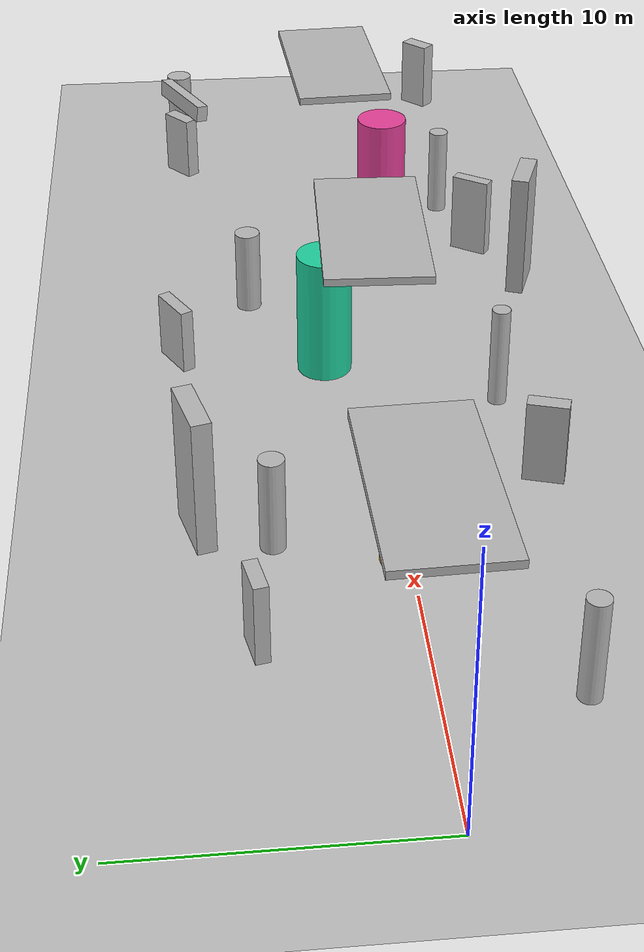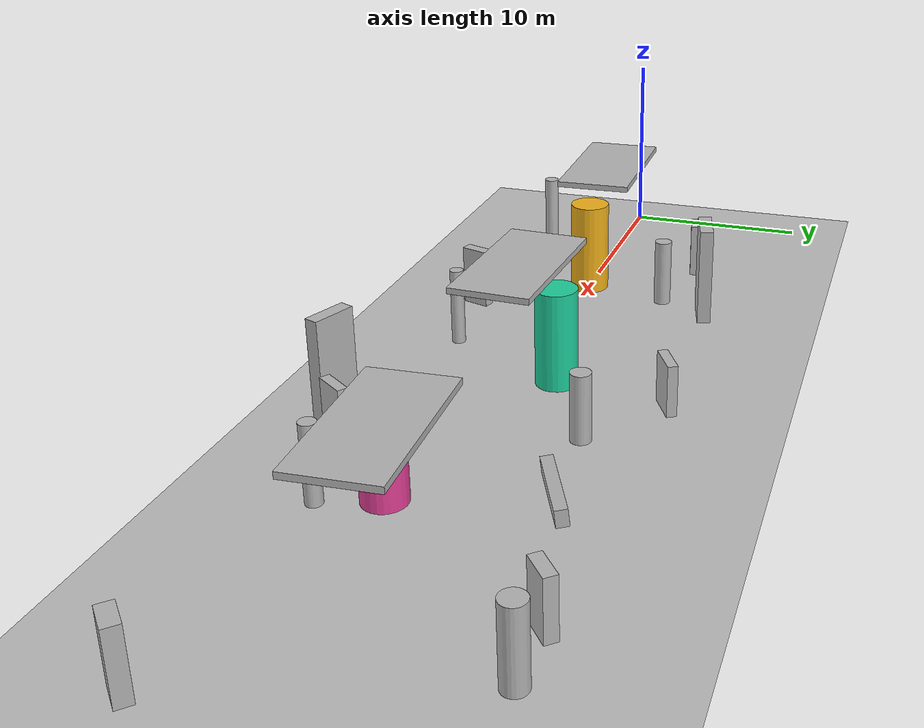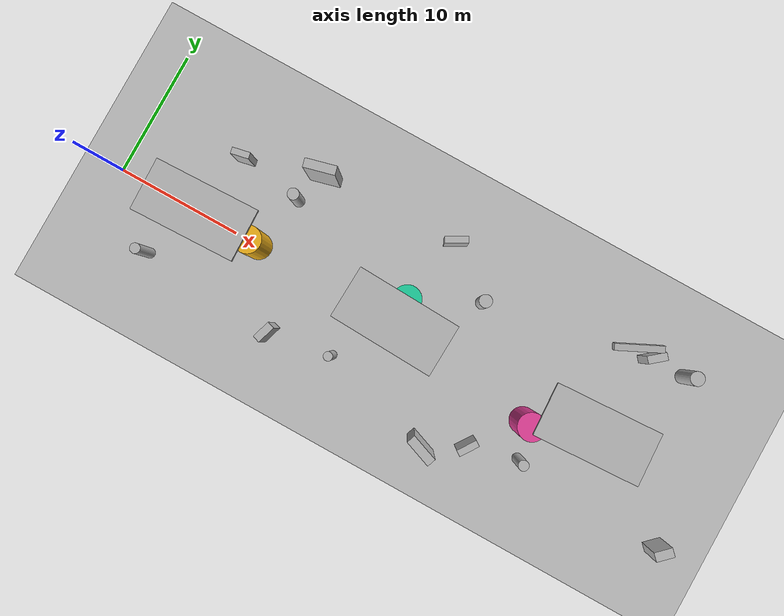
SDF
<sdf version="1.9">
 <world name="long_three_pillars">
  <physics type="ode">
   <max_step_size>0.004</max_step_size>
   <real_time_factor>0.8</real_time_factor>
   <real_time_update_rate>200</real_time_update_rate>
  </physics>
  <gravity>0 0 -9.8</gravity>
  <scene>
   <grid>true</grid>
   <ambient>0.4 0.4 0.4 1</ambient>
   <background>0.72 0.78 0.85 1</background>
   <shadows>true</shadows>
  </scene>
  <model name="ground_plane">
   <static>true</static>
   <link name="link">
    <collision name="collision">
     <geometry><plane><normal>0 0 1</normal><size>200 200</size></plane></geometry>
    </collision>
    <visual name="visual">
     <geometry><plane><normal>0 0 1</normal><size>200 200</size></plane></geometry>
     <material><ambient>0.75 0.75 0.75 1</ambient><diffuse>0.75 0.75 0.75 1</diffuse></material>
    </visual>
   </link>
  </model>
  <model name="long_three_pillar_01">
   <static>true</static>
   <pose>12.0 0.0 2.5 0 0 0</pose>
   <link name="link">
    <collision name="collision">
     <geometry><cylinder><radius>1.05</radius><length>5.0</length></cylinder></geometry>
    </collision>
    <visual name="visual">
     <geometry><cylinder><radius>1.05</radius><length>5.0</length></cylinder></geometry>
     <material><ambient>0.85 0.55 0.08 1</ambient><diffuse>0.95 0.70 0.10 1</diffuse></material>
    </visual>
   </link>
  </model>
  <model name="long_three_pillar_02">
   <static>true</static>
   <pose>24.0 1.8 2.5 0 0 0.12</pose>
   <link name="link">
    <collision name="collision">
     <geometry><cylinder><radius>1.05</radius><length>5.0</length></cylinder></geometry>
    </collision>
    <visual name="visual">
     <geometry><cylinder><radius>1.05</radius><length>5.0</length></cylinder></geometry>
     <material><ambient>0.10 0.65 0.50 1</ambient><diffuse>0.12 0.82 0.62 1</diffuse></material>
    </visual>
   </link>
  </model>
  <model name="long_three_pillar_03">
   <static>true</static>
   <pose>36.0 -1.8 2.5 0 0 -0.12</pose>
   <link name="link">
    <collision name="collision">
     <geometry><cylinder><radius>1.05</radius><length>5.0</length></cylinder></geometry>
    </collision>
    <visual name="visual">
     <geometry><cylinder><radius>1.05</radius><length>5.0</length></cylinder></geometry>
     <material><ambient>0.75 0.20 0.48 1</ambient><diffuse>0.90 0.25 0.60 1</diffuse></material>
    </visual>
   </link>
  </model>
  <model name="texture_tree_01">
   <static>true</static>
   <pose>5.0 -4.5 1.9 0 0 0.1</pose>
   <link name="link">
    <collision name="collision">
     <geometry><cylinder><radius>0.40</radius><length>3.8</length></cylinder></geometry>
    </collision>
    <visual name="visual">
     <geometry><cylinder><radius>0.40</radius><length>3.8</length></cylinder></geometry>
    </visual>
   </link>
  </model>
  <model name="texture_tree_02">
   <static>true</static>
   <pose>13.0 4.5 1.8 0 0 -0.2</pose>
   <link name="link">
    <collision name="collision">
     <geometry><cylinder><radius>0.45</radius><length>3.6</length></cylinder></geometry>
    </collision>
    <visual name="visual">
     <geometry><cylinder><radius>0.45</radius><length>3.6</length></cylinder></geometry>
    </visual>
   </link>
  </model>
  <model name="texture_tree_03">
   <static>true</static>
   <pose>21.0 -4.5 2.0 0 0 0.3</pose>
   <link name="link">
    <collision name="collision">
     <geometry><cylinder><radius>0.35</radius><length>4.0</length></cylinder></geometry>
    </collision>
    <visual name="visual">
     <geometry><cylinder><radius>0.35</radius><length>4.0</length></cylinder></geometry>
    </visual>
   </link>
  </model>
  <model name="texture_tree_04">
   <static>true</static>
   <pose>29.0 4.5 1.7 0 0 -0.4</pose>
   <link name="link">
    <collision name="collision">
     <geometry><cylinder><radius>0.50</radius><length>3.4</length></cylinder></geometry>
    </collision>
    <visual name="visual">
     <geometry><cylinder><radius>0.50</radius><length>3.4</length></cylinder></geometry>
    </visual>
   </link>
  </model>
  <model name="texture_tree_05">
   <static>true</static>
   <pose>37.0 -4.5 1.9 0 0 0.5</pose>
   <link name="link">
    <collision name="collision">
     <geometry><cylinder><radius>0.40</radius><length>3.8</length></cylinder></geometry>
    </collision>
    <visual name="visual">
     <geometry><cylinder><radius>0.40</radius><length>3.8</length></cylinder></geometry>
    </visual>
   </link>
  </model>
  <model name="texture_tree_06">
   <static>true</static>
   <pose>45.0 7.0 1.8 0 0 -0.6</pose>
   <link name="link">
    <collision name="collision">
     <geometry><cylinder><radius>0.55</radius><length>3.6</length></cylinder></geometry>
    </collision>
    <visual name="visual">
     <geometry><cylinder><radius>0.55</radius><length>3.6</length></cylinder></geometry>
    </visual>
   </link>
  </model>
  <model name="texture_panel_01">
   <static>true</static>
   <pose>8.0 5.3 1.5 0 0 0.2</pose>
   <link name="link">
    <collision name="collision"><geometry><box><size>1.4 0.5 3.0</size></box></geometry></collision>
    <visual name="visual"><geometry><box><size>1.4 0.5 3.0</size></box></geometry></visual>
   </link>
  </model>
  <model name="texture_panel_02">
   <static>true</static>
   <pose>16.0 -5.3 1.6 0 0 -0.3</pose>
   <link name="link">
    <collision name="collision"><geometry><box><size>0.6 1.5 3.2</size></box></geometry></collision>
    <visual name="visual"><geometry><box><size>0.6 1.5 3.2</size></box></geometry></visual>
   </link>
  </model>
  <model name="texture_panel_03">
   <static>true</static>
   <pose>25.0 7.5 1.3 0 0 0.5</pose>
   <link name="link">
    <collision name="collision"><geometry><box><size>1.8 0.5 2.6</size></box></geometry></collision>
    <visual name="visual"><geometry><box><size>1.8 0.5 2.6</size></box></geometry></visual>
   </link>
  </model>
  <model name="texture_panel_04">
   <static>true</static>
   <pose>33.0 -5.4 1.7 0 0 -0.6</pose>
   <link name="link">
    <collision name="collision"><geometry><box><size>0.5 1.6 3.4</size></box></geometry></collision>
    <visual name="visual"><geometry><box><size>0.5 1.6 3.4</size></box></geometry></visual>
   </link>
  </model>
  <model name="texture_panel_05">
   <static>true</static>
   <pose>42.0 7.0 1.4 0 0 0.7</pose>
   <link name="link">
    <collision name="collision"><geometry><box><size>1.5 0.6 2.8</size></box></geometry></collision>
    <visual name="visual"><geometry><box><size>1.5 0.6 2.8</size></box></geometry></visual>
   </link>
  </model>
  <model name="texture_panel_06">
   <static>true</static>
   <pose>49.0 -5.2 1.6 0 0 -0.8</pose>
   <link name="link">
    <collision name="collision"><geometry><box><size>0.7 1.4 3.2</size></box></geometry></collision>
    <visual name="visual"><geometry><box><size>0.7 1.4 3.2</size></box></geometry></visual>
   </link>
  </model>
  <model name="feature_corner_a">
   <static>true</static>
   <pose>14.0 7.0 2.6 0 0 0.25</pose>
   <link name="link">
    <collision name="collision"><geometry><box><size>2.4 0.7 5.2</size></box></geometry></collision>
    <visual name="visual"><geometry><box><size>2.4 0.7 5.2</size></box></geometry></visual>
   </link>
  </model>
  <model name="feature_corner_b">
   <static>true</static>
   <pose>30.0 -7.0 2.6 0 0 -0.35</pose>
   <link name="link">
    <collision name="collision"><geometry><box><size>2.2 0.7 5.2</size></box></geometry></collision>
    <visual name="visual"><geometry><box><size>2.2 0.7 5.2</size></box></geometry></visual>
   </link>
  </model>
  <model name="feature_beam">
   <static>true</static>
   <pose>40.0 6.8 4.5 0.1 0 0.45</pose>
   <link name="link">
    <collision name="collision"><geometry><box><size>3.6 0.5 0.7</size></box></geometry></collision>
    <visual name="visual"><geometry><box><size>3.6 0.5 0.7</size></box></geometry></visual>
   </link>
  </model>
  <model name="texture_overhead_01">
   <static>true</static>
   <pose>8.0 0.0 6.0 0 0 0.03</pose>
   <link name="link">
    <collision name="collision"><geometry><box><size>8.0 4.0 0.30</size></box></geometry></collision>
    <visual name="visual"><geometry><box><size>8.0 4.0 0.30</size></box></geometry></visual>
   </link>
  </model>
  <model name="texture_overhead_02">
   <static>true</static>
   <pose>24.0 0.0 6.0 0 0 -0.04</pose>
   <link name="link">
    <collision name="collision"><geometry><box><size>8.0 4.0 0.30</size></box></geometry></collision>
    <visual name="visual"><geometry><box><size>8.0 4.0 0.30</size></box></geometry></visual>
   </link>
  </model>
  <model name="texture_overhead_03">
   <static>true</static>
   <pose>40.0 0.0 6.0 0 0 0.05</pose>
   <link name="link">
    <collision name="collision"><geometry><box><size>8.0 4.0 0.30</size></box></geometry></collision>
    <visual name="visual"><geometry><box><size>8.0 4.0 0.30</size></box></geometry></visual>
   </link>
  </model>
  <light name="sunUTC" type="directional">
   <pose>0 0 500 0 0 0</pose>
   <intensity>1</intensity>
   <direction>0.001 0.625 -0.78</direction>
  </light>
  <spherical_coordinates>
   <surface_model>EARTH_WGS84</surface_model>
   <world_frame_orientation>ENU</world_frame_orientation>
   <latitude_deg>10.8231</latitude_deg>
   <longitude_deg>106.6297</longitude_deg>
   <elevation>10</elevation>
  </spherical_coordinates>
 </world>
</sdf>
